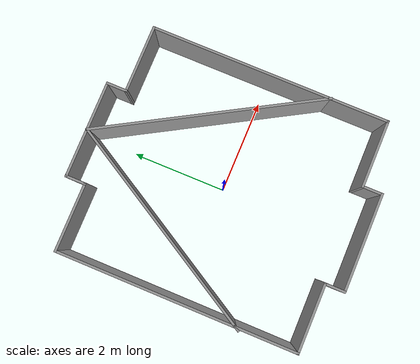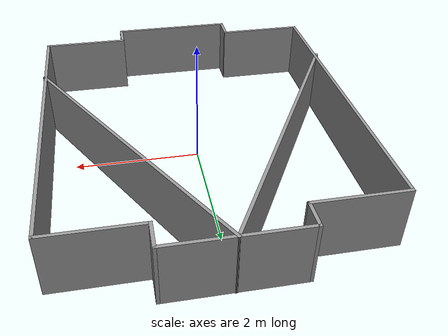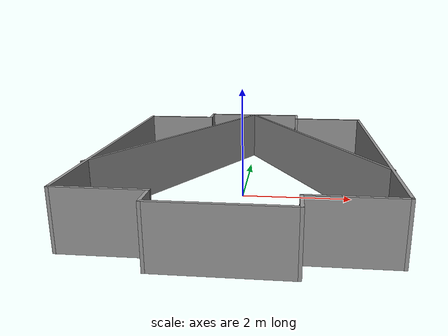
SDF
<?xml version='1.0'?>
<sdf version='1.6'>
  <model name='rgarena3'>
    <pose frame=''>-0.016018 0.004575 0 0 -0 0</pose>
    <link name='Wall_0'>
      <collision name='Wall_0_Collision'>
        <geometry>
          <box>
            <size>5.05 0.05 1</size>
          </box>
        </geometry>
        <pose frame=''>0 0 0.5 0 -0 0</pose>
      </collision>
      <visual name='Wall_0_Visual'>
        <pose frame=''>0 0 0.5 0 -0 0</pose>
        <geometry>
          <box>
            <size>5.05 0.05 1</size>
          </box>
        </geometry>
        <material>
          <script>
            <uri>file://media/materials/scripts/gazebo.material</uri>
            <name>Gazebo/Grey</name>
          </script>
          <ambient>1 1 1 1</ambient>
        </material>
        <meta>
          <layer>0</layer>
        </meta>
      </visual>
      <pose frame=''>-2.38398 -0.004575 0 0 -0 1.5708</pose>
    </link>
    <link name='Wall_14'>
      <collision name='Wall_14_Collision'>
        <geometry>
          <box>
            <size>1.45 0.05 1</size>
          </box>
        </geometry>
        <pose frame=''>0 0 0.5 0 -0 0</pose>
      </collision>
      <visual name='Wall_14_Visual'>
        <pose frame=''>0 0 0.5 0 -0 0</pose>
        <geometry>
          <box>
            <size>1.45 0.05 1</size>
          </box>
        </geometry>
        <material>
          <script>
            <uri>file://media/materials/scripts/gazebo.material</uri>
            <name>Gazebo/Grey</name>
          </script>
          <ambient>1 1 1 1</ambient>
        </material>
        <meta>
          <layer>0</layer>
        </meta>
      </visual>
      <pose frame=''>-1.68398 -2.50457 0 0 -0 0</pose>
    </link>
    <link name='Wall_16'>
      <collision name='Wall_16_Collision'>
        <geometry>
          <box>
            <size>0.45 0.05 1</size>
          </box>
        </geometry>
        <pose frame=''>0 0 0.5 0 -0 0</pose>
      </collision>
      <visual name='Wall_16_Visual'>
        <pose frame=''>0 0 0.5 0 -0 0</pose>
        <geometry>
          <box>
            <size>0.45 0.05 1</size>
          </box>
        </geometry>
        <material>
          <script>
            <uri>file://media/materials/scripts/gazebo.material</uri>
            <name>Gazebo/Grey</name>
          </script>
          <ambient>1 1 1 1</ambient>
        </material>
        <meta>
          <layer>0</layer>
        </meta>
      </visual>
      <pose frame=''>-0.983982 -2.70458 0 0 -0 -1.5708</pose>
    </link>
    <link name='Wall_18'>
      <collision name='Wall_18_Collision'>
        <geometry>
          <box>
            <size>2.065 0.05 1</size>
          </box>
        </geometry>
        <pose frame=''>0 0 0.5 0 -0 0</pose>
      </collision>
      <visual name='Wall_18_Visual'>
        <pose frame=''>0 0 0.5 0 -0 0</pose>
        <geometry>
          <box>
            <size>2.065 0.05 1</size>
          </box>
        </geometry>
        <material>
          <script>
            <uri>file://media/materials/scripts/gazebo.material</uri>
            <name>Gazebo/Grey</name>
          </script>
          <ambient>1 1 1 1</ambient>
        </material>
        <meta>
          <layer>0</layer>
        </meta>
      </visual>
      <pose frame=''>0.023518 -2.90457 0 0 -0 0</pose>
    </link>
    <link name='Wall_19'>
      <collision name='Wall_19_Collision'>
        <geometry>
          <box>
            <size>0.45 0.05 1</size>
          </box>
        </geometry>
        <pose frame=''>0 0 0.5 0 -0 0</pose>
      </collision>
      <visual name='Wall_19_Visual'>
        <pose frame=''>0 0 0.5 0 -0 0</pose>
        <geometry>
          <box>
            <size>0.45 0.05 1</size>
          </box>
        </geometry>
        <material>
          <script>
            <uri>file://media/materials/scripts/gazebo.material</uri>
            <name>Gazebo/Grey</name>
          </script>
          <ambient>1 1 1 1</ambient>
        </material>
        <meta>
          <layer>0</layer>
        </meta>
      </visual>
      <pose frame=''>1.03102 -2.70458 0 0 -0 1.5708</pose>
    </link>
    <link name='Wall_20'>
      <collision name='Wall_20_Collision'>
        <geometry>
          <box>
            <size>1.4359 0.05 1</size>
          </box>
        </geometry>
        <pose frame=''>0 0 0.5 0 -0 0</pose>
      </collision>
      <visual name='Wall_20_Visual'>
        <pose frame=''>0 0 0.5 0 -0 0</pose>
        <geometry>
          <box>
            <size>1.4359 0.05 1</size>
          </box>
        </geometry>
        <material>
          <script>
            <uri>file://media/materials/scripts/gazebo.material</uri>
            <name>Gazebo/Grey</name>
          </script>
          <ambient>1 1 1 1</ambient>
        </material>
        <meta>
          <layer>0</layer>
        </meta>
      </visual>
      <pose frame=''>1.72352 -2.50457 0 0 -0 0</pose>
    </link>
    <link name='Wall_23'>
      <collision name='Wall_23_Collision'>
        <geometry>
          <box>
            <size>5.05 0.05 1</size>
          </box>
        </geometry>
        <pose frame=''>0 0 0.5 0 -0 0</pose>
      </collision>
      <visual name='Wall_23_Visual'>
        <pose frame=''>0 0 0.5 0 -0 0</pose>
        <geometry>
          <box>
            <size>5.05 0.05 1</size>
          </box>
        </geometry>
        <material>
          <script>
            <uri>file://media/materials/scripts/gazebo.material</uri>
            <name>Gazebo/Grey</name>
          </script>
          <ambient>1 1 1 1</ambient>
        </material>
        <meta>
          <layer>0</layer>
        </meta>
      </visual>
      <pose frame=''>2.41602 -0.004575 0 0 -0 1.5708</pose>
    </link>
    <link name='Wall_25'>
      <collision name='Wall_25_Collision'>
        <geometry>
          <box>
            <size>1.45 0.05 1</size>
          </box>
        </geometry>
        <pose frame=''>0 0 0.5 0 -0 0</pose>
      </collision>
      <visual name='Wall_25_Visual'>
        <pose frame=''>0 0 0.5 0 -0 0</pose>
        <geometry>
          <box>
            <size>1.45 0.05 1</size>
          </box>
        </geometry>
        <material>
          <script>
            <uri>file://media/materials/scripts/gazebo.material</uri>
            <name>Gazebo/Grey</name>
          </script>
          <ambient>1 1 1 1</ambient>
        </material>
        <meta>
          <layer>0</layer>
        </meta>
      </visual>
      <pose frame=''>1.71602 2.49543 0 0 -0 3.14159</pose>
    </link>
    <link name='Wall_28'>
      <collision name='Wall_28_Collision'>
        <geometry>
          <box>
            <size>0.45 0.05 1</size>
          </box>
        </geometry>
        <pose frame=''>0 0 0.5 0 -0 0</pose>
      </collision>
      <visual name='Wall_28_Visual'>
        <pose frame=''>0 0 0.5 0 -0 0</pose>
        <geometry>
          <box>
            <size>0.45 0.05 1</size>
          </box>
        </geometry>
        <material>
          <script>
            <uri>file://media/materials/scripts/gazebo.material</uri>
            <name>Gazebo/Grey</name>
          </script>
          <ambient>1 1 1 1</ambient>
        </material>
        <meta>
          <layer>0</layer>
        </meta>
      </visual>
      <pose frame=''>1.01602 2.69543 0 0 -0 1.5708</pose>
    </link>
    <link name='Wall_29'>
      <collision name='Wall_29_Collision'>
        <geometry>
          <box>
            <size>2.05 0.05 1</size>
          </box>
        </geometry>
        <pose frame=''>0 0 0.5 0 -0 0</pose>
      </collision>
      <visual name='Wall_29_Visual'>
        <pose frame=''>0 0 0.5 0 -0 0</pose>
        <geometry>
          <box>
            <size>2.05 0.05 1</size>
          </box>
        </geometry>
        <material>
          <script>
            <uri>file://media/materials/scripts/gazebo.material</uri>
            <name>Gazebo/Grey</name>
          </script>
          <ambient>1 1 1 1</ambient>
        </material>
        <meta>
          <layer>0</layer>
        </meta>
      </visual>
      <pose frame=''>0.016018 2.89542 0 0 -0 3.14159</pose>
    </link>
    <link name='Wall_30'>
      <collision name='Wall_30_Collision'>
        <geometry>
          <box>
            <size>0.45 0.05 1</size>
          </box>
        </geometry>
        <pose frame=''>0 0 0.5 0 -0 0</pose>
      </collision>
      <visual name='Wall_30_Visual'>
        <pose frame=''>0 0 0.5 0 -0 0</pose>
        <geometry>
          <box>
            <size>0.45 0.05 1</size>
          </box>
        </geometry>
        <material>
          <script>
            <uri>file://media/materials/scripts/gazebo.material</uri>
            <name>Gazebo/Grey</name>
          </script>
          <ambient>1 1 1 1</ambient>
        </material>
        <meta>
          <layer>0</layer>
        </meta>
      </visual>
      <pose frame=''>-0.983982 2.69543 0 0 -0 -1.5708</pose>
    </link>
    <link name='Wall_31'>
      <collision name='Wall_31_Collision'>
        <geometry>
          <box>
            <size>1.45 0.05 1</size>
          </box>
        </geometry>
        <pose frame=''>0 0 0.5 0 -0 0</pose>
      </collision>
      <visual name='Wall_31_Visual'>
        <pose frame=''>0 0 0.5 0 -0 0</pose>
        <geometry>
          <box>
            <size>1.45 0.05 1</size>
          </box>
        </geometry>
        <material>
          <script>
            <uri>file://media/materials/scripts/gazebo.material</uri>
            <name>Gazebo/Grey</name>
          </script>
          <ambient>1 1 1 1</ambient>
        </material>
        <meta>
          <layer>0</layer>
        </meta>
      </visual>
      <pose frame=''>-1.68398 2.49543 0 0 -0 3.14159</pose>
    </link>
    <link name='Wall_41'>
      <collision name='Wall_41_Collision'>
        <geometry>
          <box>
            <size>4.90776 0.05 1</size>
          </box>
        </geometry>
        <pose frame=''>0 0 0.5 0 -0 0</pose>
      </collision>
      <visual name='Wall_41_Visual'>
        <pose frame=''>0 0 0.5 0 -0 0</pose>
        <geometry>
          <box>
            <size>4.90776 0.05 1</size>
          </box>
        </geometry>
        <material>
          <script>
            <uri>file://media/materials/scripts/gazebo.material</uri>
            <name>Gazebo/Grey</name>
          </script>
          <ambient>1 1 1 1</ambient>
        </material>
        <meta>
          <layer>0</layer>
        </meta>
      </visual>
      <pose frame=''>-1.20448 0.795425 0 0 -0 -2.09727</pose>
    </link>
    <link name='Wall_43'>
      <collision name='Wall_43_Collision'>
        <geometry>
          <box>
            <size>4.89183 0.05 1</size>
          </box>
        </geometry>
        <pose frame=''>0 0 0.5 0 -0 0</pose>
      </collision>
      <visual name='Wall_43_Visual'>
        <pose frame=''>0 0 0.5 0 -0 0</pose>
        <geometry>
          <box>
            <size>4.89183 0.05 1</size>
          </box>
        </geometry>
        <material>
          <script>
            <uri>file://media/materials/scripts/gazebo.material</uri>
            <name>Gazebo/Grey</name>
          </script>
          <ambient>1 1 1 1</ambient>
        </material>
        <meta>
          <layer>0</layer>
        </meta>
      </visual>
      <pose frame=''>1.22052 0.795425 0 0 -0 -1.05004</pose>
    </link>
    <static>1</static>
  </model>
</sdf>
